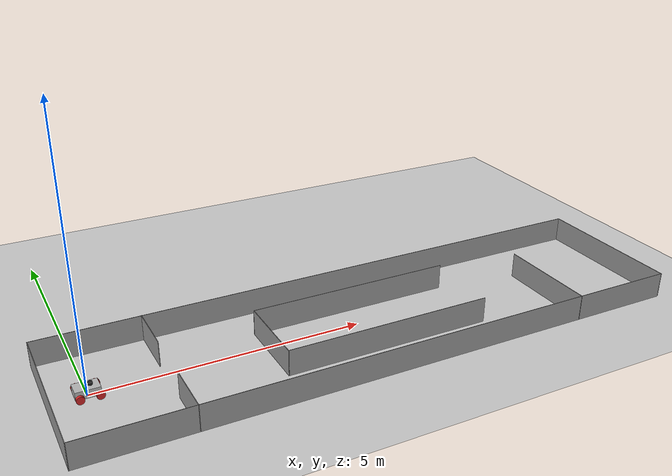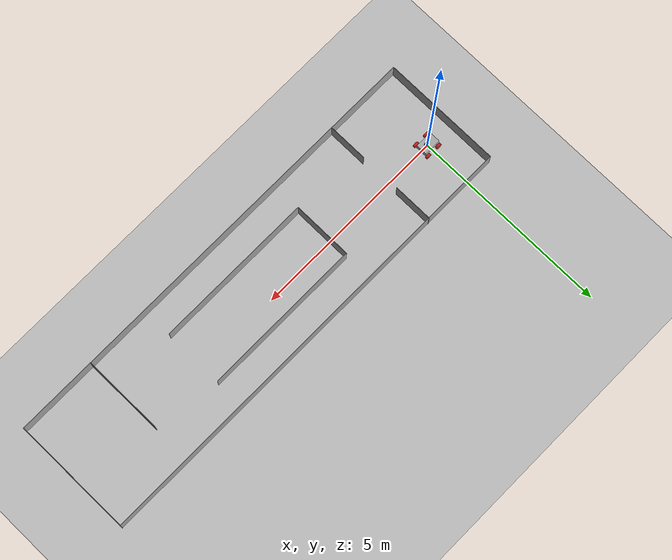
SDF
<sdf version="1.6">
 <world name="default">
  <light name="sun" type="directional">
   <pose>0 0 10 0 -0 0</pose>
   <diffuse>0.8 0.8 0.8 1</diffuse>
   <specular>0.2 0.2 0.2 1</specular>
   <attenuation>
    <range>1000</range>
    <constant>0.9</constant>
    <linear>0.01</linear>
    <quadratic>0.001</quadratic>
   </attenuation>
   <direction>-0.5 0.1 -0.9</direction>
  </light>
  <model name="ground_plane">
   <static>1</static>
   <link name="link">
    <collision name="collision">
     <geometry><plane><normal>0 0 1</normal><size>100 100</size></plane></geometry>
     <surface>
      <contact><collide_bitmask>65535</collide_bitmask></contact>
      <friction><ode><mu>100</mu><mu2>50</mu2></ode></friction>
     </surface>
    </collision>
    <visual name="visual">
     <cast_shadows>0</cast_shadows>
     <geometry><plane><normal>0 0 1</normal><size>100 100</size></plane></geometry>
     <material>
      <script><uri>file://media/materials/scripts/gazebo.material</uri><name>Gazebo/Grey</name></script>
     </material>
    </visual>
   </link>
  </model>
  <gravity>0 0 -9.8</gravity>
  <magnetic_field>6e-06 2.3e-05 -4.2e-05</magnetic_field>
  <atmosphere type="adiabatic"/>
  <physics name="default_physics" default="0" type="ode">
   <max_step_size>0.001</max_step_size>
   <real_time_factor>1</real_time_factor>
   <real_time_update_rate>1000</real_time_update_rate>
  </physics>
  <scene><ambient>0.4 0.4 0.4 1</ambient><background>0.7 0.7 0.7 1</background><shadows>1</shadows></scene>
  <audio><device>default</device></audio>
  <spherical_coordinates>
   <surface_model>EARTH_WGS84</surface_model>
   <latitude_deg>0</latitude_deg>
   <longitude_deg>0</longitude_deg>
   <elevation>0</elevation>
   <heading_deg>0</heading_deg>
  </spherical_coordinates>
  <model name="octa_kit">
   <link name="base_footprint">
    <inertial>
     <pose>-8.1e-05 2.5e-05 0.114618 0 -0 0</pose>
     <mass>18.6539</mass>
     <inertia>
      <ixx>0.159123</ixx>
      <ixy>9.99819e-14</ixy>
      <ixz>0.000414411</ixz>
      <iyy>0.324673</iyy>
      <iyz>-1.42002e-10</iyz>
      <izz>0.409099</izz>
     </inertia>
    </inertial>
    <collision name="base_footprint_collision">
     <geometry>
      <mesh><scale>1 1 1</scale><uri>/home/mamdouh/grad_ws/src/octa_kit/meshes/base_footprint.STL</uri></mesh>
     </geometry>
    </collision>
    <collision name="base_footprint_fixed_joint_lump__base_link_collision_1">
     <pose>-0.000198 0.009278 0.114238 0 -0 0</pose>
     <geometry>
      <mesh><scale>1 1 1</scale><uri>/home/mamdouh/grad_ws/src/octa_kit/meshes/base_link.STL</uri></mesh>
     </geometry>
    </collision>
    <visual name="base_footprint_visual">
     <geometry>
      <mesh><scale>1 1 1</scale><uri>/home/mamdouh/grad_ws/src/octa_kit/meshes/base_footprint.STL</uri></mesh>
     </geometry>
    </visual>
    <visual name="base_footprint_fixed_joint_lump__base_link_visual_1">
     <pose>-0.000198 0.009278 0.114238 0 -0 0</pose>
     <geometry>
      <mesh><scale>1 1 1</scale><uri>/home/mamdouh/grad_ws/src/octa_kit/meshes/base_link.STL</uri></mesh>
     </geometry>
    </visual>
   </link>
   <link name="BLwheel">
    <pose>-0.145138 0.219028 0.072344 0 -0 0</pose>
    <inertial>
     <pose>-0 -0.02982 0 0 -0 0</pose>
     <mass>0.968</mass>
     <inertia>
      <ixx>0.00153802</ixx>
      <ixy>-1.75634e-20</ixy>
      <ixz>-1.7178e-34</ixz>
      <iyy>0.00249088</iyy>
      <iyz>3.31897e-18</iyz>
      <izz>0.00153802</izz>
     </inertia>
    </inertial>
    <collision name="BLwheel_collision">
     <geometry>
      <mesh><scale>1 1 1</scale><uri>/home/mamdouh/grad_ws/src/octa_kit/meshes/BLwheel.STL</uri></mesh>
     </geometry>
     <surface><contact><ode><kp>1e+06</kp><kd>100</kd></ode></contact></surface>
    </collision>
    <visual name="BLwheel_visual">
     <geometry>
      <mesh><scale>1 1 1</scale><uri>/home/mamdouh/grad_ws/src/octa_kit/meshes/BLwheel.STL</uri></mesh>
     </geometry>
     <material>
      <script><name>Gazebo/Red</name><uri>file://media/materials/scripts/gazebo.material</uri></script>
     </material>
    </visual>
   </link>
   <joint name="BLwheel_joint" type="revolute">
    <child>BLwheel</child>
    <parent>base_footprint</parent>
    <axis>
     <xyz>0 1 0</xyz>
     <limit><lower>-1e+16</lower><upper>1e+16</upper></limit>
     <dynamics><spring_reference>0</spring_reference><spring_stiffness>0</spring_stiffness></dynamics>
     <use_parent_model_frame>1</use_parent_model_frame>
    </axis>
   </joint>
   <link name="BRwheel">
    <pose>-0.145138 -0.218972 0.072344 0 -0 0</pose>
    <inertial>
     <pose>-0 0.02982 0 0 -0 0</pose>
     <mass>0.968</mass>
     <inertia>
      <ixx>0.001538</ixx>
      <ixy>-5.5078e-20</ixy>
      <ixz>9.4245e-21</ixz>
      <iyy>0.0024909</iyy>
      <iyz>6.6398e-18</iyz>
      <izz>0.001538</izz>
     </inertia>
    </inertial>
    <collision name="BRwheel_collision">
     <geometry>
      <mesh><scale>1 1 1</scale><uri>/home/mamdouh/grad_ws/src/octa_kit/meshes/BRwheel.STL</uri></mesh>
     </geometry>
     <surface><contact><ode><kp>1e+06</kp><kd>100</kd></ode></contact></surface>
    </collision>
    <visual name="BRwheel_visual">
     <geometry>
      <mesh><scale>1 1 1</scale><uri>/home/mamdouh/grad_ws/src/octa_kit/meshes/BRwheel.STL</uri></mesh>
     </geometry>
     <material>
      <script><name>Gazebo/Red</name><uri>file://media/materials/scripts/gazebo.material</uri></script>
     </material>
    </visual>
   </link>
   <joint name="BRwheel_joint" type="revolute">
    <child>BRwheel</child>
    <parent>base_footprint</parent>
    <axis>
     <xyz>0 1 0</xyz>
     <limit><lower>-1e+16</lower><upper>1e+16</upper></limit>
     <dynamics><spring_reference>0</spring_reference><spring_stiffness>0</spring_stiffness></dynamics>
     <use_parent_model_frame>1</use_parent_model_frame>
    </axis>
   </joint>
   <link name="FLwheel">
    <pose>0.184857 0.219025 0.071789 0 -0 0</pose>
    <inertial>
     <pose>-0 -0.02982 0 0 -0 0</pose>
     <mass>0.968</mass>
     <inertia>
      <ixx>0.00153802</ixx>
      <ixy>-1.11213e-19</ixy>
      <ixz>9.8017e-21</ixz>
      <iyy>0.00249088</iyy>
      <iyz>6.77145e-18</iyz>
      <izz>0.00153802</izz>
     </inertia>
    </inertial>
    <collision name="FLwheel_collision">
     <geometry>
      <mesh><scale>1 1 1</scale><uri>/home/mamdouh/grad_ws/src/octa_kit/meshes/FLwheel.STL</uri></mesh>
     </geometry>
     <surface><contact><ode><kp>500000</kp><kd>10</kd></ode></contact></surface>
    </collision>
    <visual name="FLwheel_visual">
     <geometry>
      <mesh><scale>1 1 1</scale><uri>/home/mamdouh/grad_ws/src/octa_kit/meshes/FLwheel.STL</uri></mesh>
     </geometry>
     <material>
      <script><name>Gazebo/Red</name><uri>file://media/materials/scripts/gazebo.material</uri></script>
     </material>
    </visual>
   </link>
   <joint name="FLwheel_joint" type="revolute">
    <child>FLwheel</child>
    <parent>base_footprint</parent>
    <axis>
     <xyz>0 1 0</xyz>
     <limit><lower>-1e+16</lower><upper>1e+16</upper></limit>
     <dynamics><spring_reference>0</spring_reference><spring_stiffness>0</spring_stiffness></dynamics>
     <use_parent_model_frame>1</use_parent_model_frame>
    </axis>
   </joint>
   <link name="FRwheel">
    <pose>0.184852 -0.218972 0.071789 0 -0 0</pose>
    <inertial>
     <pose>0 0.02982 0 0 -0 0</pose>
     <mass>0.968</mass>
     <inertia>
      <ixx>0.001538</ixx>
      <ixy>-6.8076e-18</ixy>
      <ixz>2.3605e-32</ixz>
      <iyy>0.0024909</iyy>
      <iyz>-3.319e-18</iyz>
      <izz>0.001538</izz>
     </inertia>
    </inertial>
    <collision name="FRwheel_collision">
     <geometry>
      <mesh><scale>1 1 1</scale><uri>/home/mamdouh/grad_ws/src/octa_kit/meshes/FRwheel.STL</uri></mesh>
     </geometry>
     <surface><contact><ode><kp>500000</kp><kd>10</kd></ode></contact></surface>
    </collision>
    <visual name="FRwheel_visual">
     <geometry>
      <mesh><scale>1 1 1</scale><uri>/home/mamdouh/grad_ws/src/octa_kit/meshes/FRwheel.STL</uri></mesh>
     </geometry>
     <material>
      <script><name>Gazebo/Red</name><uri>file://media/materials/scripts/gazebo.material</uri></script>
     </material>
    </visual>
   </link>
   <joint name="FRwheel_joint" type="revolute">
    <child>FRwheel</child>
    <parent>base_footprint</parent>
    <axis>
     <xyz>0 1 0</xyz>
     <limit><lower>-1e+16</lower><upper>1e+16</upper></limit>
     <dynamics><spring_reference>0</spring_reference><spring_stiffness>0</spring_stiffness></dynamics>
     <use_parent_model_frame>1</use_parent_model_frame>
    </axis>
   </joint>
   <link name="Lidar">
    <pose>0.070152 2.5e-05 0.219041 0 -0 0</pose>
    <inertial>
     <pose>-4.7e-05 -0 -5.4e-05 0 -0 0</pose>
     <mass>0.271383</mass>
     <inertia>
      <ixx>0.000174496</ixx>
      <ixy>-1.59286e-20</ixy>
      <ixz>7.18405e-08</ixz>
      <iyy>0.000174496</iyy>
      <iyz>-3.14491e-19</iyz>
      <izz>0.000217146</izz>
     </inertia>
    </inertial>
    <collision name="Lidar_collision">
     <geometry>
      <mesh><scale>1 1 1</scale><uri>/home/mamdouh/grad_ws/src/octa_kit/meshes/Lidar.STL</uri></mesh>
     </geometry>
    </collision>
    <visual name="Lidar_visual">
     <geometry>
      <mesh><scale>1 1 1</scale><uri>/home/mamdouh/grad_ws/src/octa_kit/meshes/Lidar.STL</uri></mesh>
     </geometry>
     <material>
      <script><name>Gazebo/FlatBlack</name><uri>file://media/materials/scripts/gazebo.material</uri></script>
     </material>
    </visual>
    <sensor name="rplidar" type="ray">
     <pose>-4.7e-05 -0 -5.4e-05 0 -0 0</pose>
     <visualize>1</visualize>
     <update_rate>10</update_rate>
     <ray>
      <scan>
       <horizontal>
        <samples>360</samples>
        <resolution>1</resolution>
        <min_angle>0</min_angle>
        <max_angle>6.28319</max_angle>
       </horizontal>
       <vertical><samples>1</samples><min_angle>0</min_angle><max_angle>0</max_angle></vertical>
      </scan>
      <range><min>0.15</min><max>6</max><resolution>0.5</resolution></range>
      <noise><type>gaussian</type><mean>0</mean><stddev>0.01</stddev></noise>
     </ray>
     <always_on>1</always_on>
     <plugin name="gazebo_ros_lds_lfcd_controller" filename="libgazebo_ros_laser.so">
      <topicName>scan</topicName>
      <frameName>Lidar</frameName>
      <robotNamespace>/</robotNamespace>
     </plugin>
    </sensor>
   </link>
   <joint name="Lidar_joint" type="revolute">
    <child>Lidar</child>
    <parent>base_footprint</parent>
    <axis>
     <xyz>0.001684 0 0.999999</xyz>
     <limit><lower>-1e+16</lower><upper>1e+16</upper></limit>
     <dynamics><spring_reference>0</spring_reference><spring_stiffness>0</spring_stiffness></dynamics>
     <use_parent_model_frame>1</use_parent_model_frame>
    </axis>
   </joint>
   <plugin name="gazebo_ros_control" filename="libgazebo_ros_control.so">
    <robotNamespace>/</robotNamespace>
   </plugin>
   <static>0</static>
   <plugin name="omni_steering" filename="libgazebo_ros_planar_move.so">
    <commandTopic>cmd_vel</commandTopic>
    <odometryTopic>odom</odometryTopic>
    <odometryFrame>odom</odometryFrame>
    <publishOdomTF>1</publishOdomTF>
    <odometrySource>Final_maze</odometrySource>
    <updateRate>10.0</updateRate>
    <robotBaseFrame>base_footprint</robotBaseFrame>
    <publishTF>1</publishTF>
    <robotNamespace>/</robotNamespace>
   </plugin>
   <pose>1.2e-05 5e-06 5e-06 0.000125 -0.000894 -2.8e-05</pose>
  </model>
  <model name="robot_maze2">
   <pose>5.0651 -0.23475 0 0 -0 0</pose>
   <link name="Wall_0">
    <collision name="Wall_0_Collision">
     <geometry><box><size>3 0.01 0.5</size></box></geometry>
     <pose>0 0 0.25 0 -0 0</pose>
    </collision>
    <visual name="Wall_0_Visual">
     <pose>0 0 0.25 0 -0 0</pose>
     <geometry><box><size>3 0.01 0.5</size></box></geometry>
     <material>
      <script><uri>file://media/materials/scripts/gazebo.material</uri><name>Gazebo/Grey</name></script>
      <ambient>1 1 1 1</ambient>
     </material>
     <meta><layer>0</layer></meta>
    </visual>
    <pose>5.73006 -0.003425 0 0 -0 -1.5708</pose>
   </link>
   <link name="Wall_14">
    <collision name="Wall_14_Collision">
     <geometry><box><size>1 0.01 0.5</size></box></geometry>
     <pose>0 0 0.25 0 -0 0</pose>
    </collision>
    <visual name="Wall_14_Visual">
     <pose>0 0 0.25 0 -0 0</pose>
     <geometry><box><size>1 0.01 0.5</size></box></geometry>
     <material>
      <script><uri>file://media/materials/scripts/gazebo.material</uri><name>Gazebo/Grey</name></script>
      <ambient>1 1 1 1</ambient>
     </material>
     <meta><layer>0</layer></meta>
    </visual>
    <pose>-3.75485 1.00345 0 0 -0 -1.5708</pose>
   </link>
   <link name="Wall_2">
    <collision name="Wall_2_Collision">
     <geometry><box><size>2.00443 0.01 0.5</size></box></geometry>
     <pose>0 0 0.25 0 -0 0</pose>
    </collision>
    <visual name="Wall_2_Visual">
     <pose>0 0 0.25 0 -0 0</pose>
     <geometry><box><size>2.00443 0.01 0.5</size></box></geometry>
     <material>
      <script><uri>file://media/materials/scripts/gazebo.material</uri><name>Gazebo/Grey</name></script>
      <ambient>1 1 1 1</ambient>
     </material>
     <meta><layer>0</layer></meta>
    </visual>
    <pose>4.73506 -1.49842 0 0 -0 3.14159</pose>
   </link>
   <link name="Wall_20">
    <collision name="Wall_20_Collision">
     <geometry><box><size>4 0.01 0.5</size></box></geometry>
     <pose>0 0 0.25 0 -0 0</pose>
    </collision>
    <visual name="Wall_20_Visual">
     <pose>0 0 0.25 0 -0 0</pose>
     <geometry><box><size>4 0.01 0.5</size></box></geometry>
     <material>
      <script><uri>file://media/materials/scripts/gazebo.material</uri><name>Gazebo/Grey</name></script>
      <ambient>1 1 1 1</ambient>
     </material>
     <meta><layer>0</layer></meta>
    </visual>
    <pose>0.090151 -0.738425 0 0 -0 0</pose>
   </link>
   <link name="Wall_22">
    <collision name="Wall_22_Collision">
     <geometry><box><size>4 0.01 0.5</size></box></geometry>
     <pose>0 0 0.25 0 -0 0</pose>
    </collision>
    <visual name="Wall_22_Visual">
     <pose>0 0 0.25 0 -0 0</pose>
     <geometry><box><size>4 0.01 0.5</size></box></geometry>
     <material>
      <script><uri>file://media/materials/scripts/gazebo.material</uri><name>Gazebo/Grey</name></script>
      <ambient>1 1 1 1</ambient>
     </material>
     <meta><layer>0</layer></meta>
    </visual>
    <pose>0.090151 0.751575 0 0 -0 0</pose>
   </link>
   <link name="Wall_25">
    <collision name="Wall_25_Collision">
     <geometry><box><size>1.5 0.01 0.5</size></box></geometry>
     <pose>0 0 0.25 0 -0 0</pose>
    </collision>
    <visual name="Wall_25_Visual">
     <pose>0 0 0.25 0 -0 0</pose>
     <geometry><box><size>1.5 0.01 0.5</size></box></geometry>
     <material>
      <script><uri>file://media/materials/scripts/gazebo.material</uri><name>Gazebo/Grey</name></script>
      <ambient>1 1 1 1</ambient>
     </material>
     <meta><layer>0</layer></meta>
    </visual>
    <pose>-1.90485 0.006575 0 0 -0 -1.5708</pose>
   </link>
   <link name="Wall_29">
    <collision name="Wall_29_Collision">
     <geometry><box><size>11.4707 0.01 0.5</size></box></geometry>
     <pose>0 0 0.25 0 -0 0</pose>
    </collision>
    <visual name="Wall_29_Visual">
     <pose>0 0 0.25 0 -0 0</pose>
     <geometry><box><size>11.4707 0.01 0.5</size></box></geometry>
     <material>
      <script><uri>file://media/materials/scripts/gazebo.material</uri><name>Gazebo/Grey</name></script>
      <ambient>1 1 1 1</ambient>
     </material>
     <meta><layer>0</layer></meta>
    </visual>
    <pose>-0.001912 1.48715 0 0 -0 -0.000772</pose>
   </link>
   <link name="Wall_3">
    <collision name="Wall_3_Collision">
     <geometry><box><size>2.00004 0.01 0.5</size></box></geometry>
     <pose>0 0 0.25 0 -0 0</pose>
    </collision>
    <visual name="Wall_3_Visual">
     <pose>0 0 0.25 0 -0 0</pose>
     <geometry><box><size>2.00004 0.01 0.5</size></box></geometry>
     <material>
      <script><uri>file://media/materials/scripts/gazebo.material</uri><name>Gazebo/Grey</name></script>
      <ambient>1 1 1 1</ambient>
     </material>
     <meta><layer>0</layer></meta>
    </visual>
    <pose>3.72752 -0.503425 0 0 -0 1.5708</pose>
   </link>
   <link name="Wall_5">
    <collision name="Wall_5_Collision">
     <geometry><box><size>7.47937 0.01 0.5</size></box></geometry>
     <pose>0 0 0.25 0 -0 0</pose>
    </collision>
    <visual name="Wall_5_Visual">
     <pose>0 0 0.25 0 -0 0</pose>
     <geometry><box><size>7.47937 0.01 0.5</size></box></geometry>
     <material>
      <script><uri>file://media/materials/scripts/gazebo.material</uri><name>Gazebo/Grey</name></script>
      <ambient>1 1 1 1</ambient>
     </material>
     <meta><layer>0</layer></meta>
    </visual>
    <pose>-0.007162 -1.49842 0 0 -0 3.14159</pose>
   </link>
   <link name="Wall_6">
    <collision name="Wall_6_Collision">
     <geometry><box><size>1 0.01 0.5</size></box></geometry>
     <pose>0 0 0.25 0 -0 0</pose>
    </collision>
    <visual name="Wall_6_Visual">
     <pose>0 0 0.25 0 -0 0</pose>
     <geometry><box><size>1 0.01 0.5</size></box></geometry>
     <material>
      <script><uri>file://media/materials/scripts/gazebo.material</uri><name>Gazebo/Grey</name></script>
      <ambient>1 1 1 1</ambient>
     </material>
     <meta><layer>0</layer></meta>
    </visual>
    <pose>-3.74185 -1.00343 0 0 -0 1.5708</pose>
   </link>
   <link name="Wall_8">
    <collision name="Wall_8_Collision">
     <geometry><box><size>2 0.01 0.5</size></box></geometry>
     <pose>0 0 0.25 0 -0 0</pose>
    </collision>
    <visual name="Wall_8_Visual">
     <pose>0 0 0.25 0 -0 0</pose>
     <geometry><box><size>2 0.01 0.5</size></box></geometry>
     <material>
      <script><uri>file://media/materials/scripts/gazebo.material</uri><name>Gazebo/Grey</name></script>
      <ambient>1 1 1 1</ambient>
     </material>
     <meta><layer>0</layer></meta>
    </visual>
    <pose>-4.73685 -1.49842 0 0 -0 3.14159</pose>
   </link>
   <link name="Wall_9">
    <collision name="Wall_9_Collision">
     <geometry><box><size>3 0.01 0.5</size></box></geometry>
     <pose>0 0 0.25 0 -0 0</pose>
    </collision>
    <visual name="Wall_9_Visual">
     <pose>0 0 0.25 0 -0 0</pose>
     <geometry><box><size>3 0.01 0.5</size></box></geometry>
     <material>
      <script><uri>file://media/materials/scripts/gazebo.material</uri><name>Gazebo/Grey</name></script>
      <ambient>1 1 1 1</ambient>
     </material>
     <meta><layer>0</layer></meta>
    </visual>
    <pose>-5.73185 -0.003425 0 0 -0 1.5708</pose>
   </link>
   <static>1</static>
  </model>
 </world>
</sdf>
